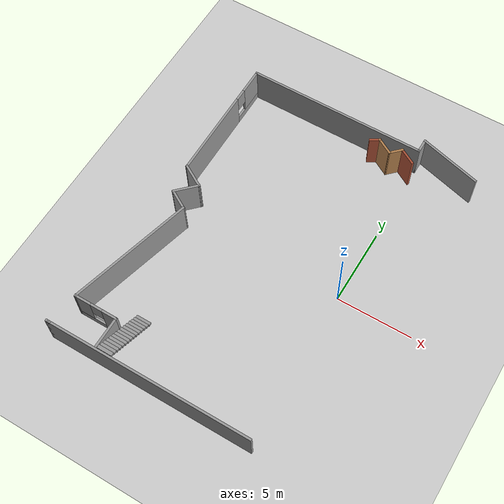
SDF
<sdf version="1.6">
 <world name="default">
  <model name="ground_plane">
   <static>1</static>
   <link name="link">
    <collision name="collision">
     <geometry><plane><normal>0 0 1</normal><size>100 100</size></plane></geometry>
     <surface><friction><ode><mu>100</mu><mu2>50</mu2></ode></friction></surface>
    </collision>
    <visual name="visual">
     <cast_shadows>0</cast_shadows>
     <geometry><plane><normal>0 0 1</normal><size>100 100</size></plane></geometry>
     <material>
      <script><uri>file://media/materials/scripts/gazebo.material</uri><name>Gazebo/Grey</name></script>
     </material>
    </visual>
   </link>
  </model>
  <model name="cierre_slaw_world">
   <pose>-4.66715 0.29944 0 0 -0 0</pose>
   <link name="Stairs_0">
    <visual name="Stairs_0_Visual_0">
     <pose>-4.59466 -7.51518 0.083333 0 -0 0</pose>
     <geometry><box><size>1 0.233333 0.166667</size></box></geometry>
     <material>
      <script><uri>file://media/materials/scripts/gazebo.material</uri><name>Gazebo/Grey</name></script>
      <ambient>1 1 1 1</ambient>
     </material>
    </visual>
    <collision name="Stairs_0_Collision_0">
     <geometry><box><size>1 0.233333 0.166667</size></box></geometry>
     <pose>-4.59466 -7.51518 0.083333 0 -0 0</pose>
    </collision>
    <visual name="Stairs_0_Visual_1">
     <pose>-4.59466 -7.74852 0.25 0 -0 0</pose>
     <geometry><box><size>1 0.233333 0.166667</size></box></geometry>
     <material>
      <script><uri>file://media/materials/scripts/gazebo.material</uri><name>Gazebo/Grey</name></script>
      <ambient>1 1 1 1</ambient>
     </material>
    </visual>
    <collision name="Stairs_0_Collision_1">
     <geometry><box><size>1 0.233333 0.166667</size></box></geometry>
     <pose>-4.59466 -7.74852 0.25 0 -0 0</pose>
    </collision>
    <visual name="Stairs_0_Visual_2">
     <pose>-4.59466 -7.98185 0.416667 0 -0 0</pose>
     <geometry><box><size>1 0.233333 0.166667</size></box></geometry>
     <material>
      <script><uri>file://media/materials/scripts/gazebo.material</uri><name>Gazebo/Grey</name></script>
      <ambient>1 1 1 1</ambient>
     </material>
    </visual>
    <collision name="Stairs_0_Collision_2">
     <geometry><box><size>1 0.233333 0.166667</size></box></geometry>
     <pose>-4.59466 -7.98185 0.416667 0 -0 0</pose>
    </collision>
    <visual name="Stairs_0_Visual_3">
     <pose>-4.59466 -8.21518 0.583333 0 -0 0</pose>
     <geometry><box><size>1 0.233333 0.166667</size></box></geometry>
     <material>
      <script><uri>file://media/materials/scripts/gazebo.material</uri><name>Gazebo/Grey</name></script>
      <ambient>1 1 1 1</ambient>
     </material>
    </visual>
    <collision name="Stairs_0_Collision_3">
     <geometry><box><size>1 0.233333 0.166667</size></box></geometry>
     <pose>-4.59466 -8.21518 0.583333 0 -0 0</pose>
    </collision>
    <visual name="Stairs_0_Visual_4">
     <pose>-4.59466 -8.44852 0.75 0 -0 0</pose>
     <geometry><box><size>1 0.233333 0.166667</size></box></geometry>
     <material>
      <script><uri>file://media/materials/scripts/gazebo.material</uri><name>Gazebo/Grey</name></script>
      <ambient>1 1 1 1</ambient>
     </material>
    </visual>
    <collision name="Stairs_0_Collision_4">
     <geometry><box><size>1 0.233333 0.166667</size></box></geometry>
     <pose>-4.59466 -8.44852 0.75 0 -0 0</pose>
    </collision>
    <visual name="Stairs_0_Visual_5">
     <pose>-4.59466 -8.68185 0.916667 0 -0 0</pose>
     <geometry><box><size>1 0.233333 0.166667</size></box></geometry>
     <material>
      <script><uri>file://media/materials/scripts/gazebo.material</uri><name>Gazebo/Grey</name></script>
      <ambient>1 1 1 1</ambient>
     </material>
    </visual>
    <collision name="Stairs_0_Collision_5">
     <geometry><box><size>1 0.233333 0.166667</size></box></geometry>
     <pose>-4.59466 -8.68185 0.916667 0 -0 0</pose>
    </collision>
    <visual name="Stairs_0_Visual_6">
     <pose>-4.59466 -8.91518 1.08333 0 -0 0</pose>
     <geometry><box><size>1 0.233333 0.166667</size></box></geometry>
     <material>
      <script><uri>file://media/materials/scripts/gazebo.material</uri><name>Gazebo/Grey</name></script>
      <ambient>1 1 1 1</ambient>
     </material>
    </visual>
    <collision name="Stairs_0_Collision_6">
     <geometry><box><size>1 0.233333 0.166667</size></box></geometry>
     <pose>-4.59466 -8.91518 1.08333 0 -0 0</pose>
    </collision>
    <visual name="Stairs_0_Visual_7">
     <pose>-4.59466 -9.14852 1.25 0 -0 0</pose>
     <geometry><box><size>1 0.233333 0.166667</size></box></geometry>
     <material>
      <script><uri>file://media/materials/scripts/gazebo.material</uri><name>Gazebo/Grey</name></script>
      <ambient>1 1 1 1</ambient>
     </material>
    </visual>
    <collision name="Stairs_0_Collision_7">
     <geometry><box><size>1 0.233333 0.166667</size></box></geometry>
     <pose>-4.59466 -9.14852 1.25 0 -0 0</pose>
    </collision>
    <visual name="Stairs_0_Visual_8">
     <pose>-4.59466 -9.38185 1.41667 0 -0 0</pose>
     <geometry><box><size>1 0.233333 0.166667</size></box></geometry>
     <material>
      <script><uri>file://media/materials/scripts/gazebo.material</uri><name>Gazebo/Grey</name></script>
      <ambient>1 1 1 1</ambient>
     </material>
    </visual>
    <collision name="Stairs_0_Collision_8">
     <geometry><box><size>1 0.233333 0.166667</size></box></geometry>
     <pose>-4.59466 -9.38185 1.41667 0 -0 0</pose>
    </collision>
    <visual name="Stairs_0_Visual_9">
     <pose>-4.59466 -9.61518 1.58333 0 -0 0</pose>
     <geometry><box><size>1 0.233333 0.166667</size></box></geometry>
     <material>
      <script><uri>file://media/materials/scripts/gazebo.material</uri><name>Gazebo/Grey</name></script>
      <ambient>1 1 1 1</ambient>
     </material>
    </visual>
    <collision name="Stairs_0_Collision_9">
     <geometry><box><size>1 0.233333 0.166667</size></box></geometry>
     <pose>-4.59466 -9.61518 1.58333 0 -0 0</pose>
    </collision>
    <visual name="Stairs_0_Visual_10">
     <pose>-4.59466 -9.84852 1.75 0 -0 0</pose>
     <geometry><box><size>1 0.233333 0.166667</size></box></geometry>
     <material>
      <script><uri>file://media/materials/scripts/gazebo.material</uri><name>Gazebo/Grey</name></script>
      <ambient>1 1 1 1</ambient>
     </material>
    </visual>
    <collision name="Stairs_0_Collision_10">
     <geometry><box><size>1 0.233333 0.166667</size></box></geometry>
     <pose>-4.59466 -9.84852 1.75 0 -0 0</pose>
    </collision>
    <visual name="Stairs_0_Visual_11">
     <pose>-4.59466 -10.0819 1.91667 0 -0 0</pose>
     <geometry><box><size>1 0.233333 0.166667</size></box></geometry>
     <material>
      <script><uri>file://media/materials/scripts/gazebo.material</uri><name>Gazebo/Grey</name></script>
      <ambient>1 1 1 1</ambient>
     </material>
    </visual>
    <collision name="Stairs_0_Collision_11">
     <geometry><box><size>1 0.233333 0.166667</size></box></geometry>
     <pose>-4.59466 -10.0819 1.91667 0 -0 0</pose>
    </collision>
    <visual name="Stairs_0_Visual_12">
     <pose>-4.59466 -10.3152 2.08333 0 -0 0</pose>
     <geometry><box><size>1 0.233333 0.166667</size></box></geometry>
     <material>
      <script><uri>file://media/materials/scripts/gazebo.material</uri><name>Gazebo/Grey</name></script>
      <ambient>1 1 1 1</ambient>
     </material>
    </visual>
    <collision name="Stairs_0_Collision_12">
     <geometry><box><size>1 0.233333 0.166667</size></box></geometry>
     <pose>-4.59466 -10.3152 2.08333 0 -0 0</pose>
    </collision>
    <visual name="Stairs_0_Visual_13">
     <pose>-4.59466 -10.5485 2.25 0 -0 0</pose>
     <geometry><box><size>1 0.233333 0.166667</size></box></geometry>
     <material>
      <script><uri>file://media/materials/scripts/gazebo.material</uri><name>Gazebo/Grey</name></script>
      <ambient>1 1 1 1</ambient>
     </material>
    </visual>
    <collision name="Stairs_0_Collision_13">
     <geometry><box><size>1 0.233333 0.166667</size></box></geometry>
     <pose>-4.59466 -10.5485 2.25 0 -0 0</pose>
    </collision>
    <visual name="Stairs_0_Visual_14">
     <pose>-4.59466 -10.7819 2.41667 0 -0 0</pose>
     <geometry><box><size>1 0.233333 0.166667</size></box></geometry>
     <material>
      <script><uri>file://media/materials/scripts/gazebo.material</uri><name>Gazebo/Grey</name></script>
      <ambient>1 1 1 1</ambient>
     </material>
    </visual>
    <collision name="Stairs_0_Collision_14">
     <geometry><box><size>1 0.233333 0.166667</size></box></geometry>
     <pose>-4.59466 -10.7819 2.41667 0 -0 0</pose>
    </collision>
   </link>
   <link name="Wall_23">
    <collision name="Wall_23_Collision">
     <geometry><box><size>3.5 0.15 2.5</size></box></geometry>
     <pose>0 0 1.25 0 -0 0</pose>
    </collision>
    <visual name="Wall_23_Visual">
     <pose>0 0 1.25 0 -0 0</pose>
     <geometry><box><size>3.5 0.15 2.5</size></box></geometry>
     <material>
      <script><uri>file://media/materials/scripts/gazebo.material</uri><name>Gazebo/Grey</name></script>
      <ambient>1 1 1 1</ambient>
     </material>
    </visual>
    <pose>-6.85744 -10.9944 0 0 -0 0</pose>
   </link>
   <link name="Wall_24">
    <collision name="Wall_24_Collision">
     <geometry><box><size>2.25 0.15 2.5</size></box></geometry>
     <pose>0 0 1.25 0 -0 0</pose>
    </collision>
    <visual name="Wall_24_Visual">
     <pose>0 0 1.25 0 -0 0</pose>
     <geometry><box><size>2.25 0.15 2.5</size></box></geometry>
     <material>
      <script><uri>file://media/materials/scripts/gazebo.material</uri><name>Gazebo/Grey</name></script>
      <ambient>1 1 1 1</ambient>
     </material>
    </visual>
    <pose>-5.18244 -9.94435 0 0 -0 1.5708</pose>
   </link>
   <link name="Wall_25">
    <pose>-6.60744 -8.89435 0 0 -0 3.14159</pose>
    <visual name="Wall_25_Visual_0">
     <pose>-0.971946 0 1.25 0 -0 0</pose>
     <geometry><box><size>1.05611 0.15 2.5</size></box></geometry>
     <material>
      <script><uri>file://media/materials/scripts/gazebo.material</uri><name>Gazebo/Grey</name></script>
      <ambient>1 1 1 1</ambient>
     </material>
    </visual>
    <collision name="Wall_25_Collision_0">
     <geometry><box><size>1.05611 0.15 2.5</size></box></geometry>
     <pose>-0.971946 0 1.25 0 -0 0</pose>
    </collision>
    <visual name="Wall_25_Visual_1">
     <pose>0.528054 0 0.25 0 -0 0</pose>
     <geometry><box><size>1.94389 0.15 0.5</size></box></geometry>
     <material>
      <script><uri>file://media/materials/scripts/gazebo.material</uri><name>Gazebo/Grey</name></script>
      <ambient>1 1 1 1</ambient>
     </material>
    </visual>
    <collision name="Wall_25_Collision_1">
     <geometry><box><size>1.94389 0.15 0.5</size></box></geometry>
     <pose>0.528054 0 0.25 0 -0 0</pose>
    </collision>
    <visual name="Wall_25_Visual_2">
     <pose>0.928054 0 1.5 0 -0 0</pose>
     <geometry><box><size>1.14389 0.15 2</size></box></geometry>
     <material>
      <script><uri>file://media/materials/scripts/gazebo.material</uri><name>Gazebo/Grey</name></script>
      <ambient>1 1 1 1</ambient>
     </material>
    </visual>
    <collision name="Wall_25_Collision_2">
     <geometry><box><size>1.14389 0.15 2</size></box></geometry>
     <pose>0.928054 0 1.5 0 -0 0</pose>
    </collision>
    <visual name="Wall_25_Visual_3">
     <pose>-0.043892 0 1.9 0 -0 0</pose>
     <geometry><box><size>0.8 0.15 1.2</size></box></geometry>
     <material>
      <script><uri>file://media/materials/scripts/gazebo.material</uri><name>Gazebo/Grey</name></script>
      <ambient>1 1 1 1</ambient>
     </material>
    </visual>
    <collision name="Wall_25_Collision_3">
     <geometry><box><size>0.8 0.15 1.2</size></box></geometry>
     <pose>-0.043892 0 1.9 0 -0 0</pose>
    </collision>
   </link>
   <link name="Wall_26">
    <collision name="Wall_26_Collision">
     <geometry><box><size>8.5 0.15 2.5</size></box></geometry>
     <pose>0 0 1.25 0 -0 0</pose>
    </collision>
    <visual name="Wall_26_Visual">
     <pose>0 0 1.25 0 -0 0</pose>
     <geometry><box><size>8.5 0.15 2.5</size></box></geometry>
     <material>
      <script><uri>file://media/materials/scripts/gazebo.material</uri><name>Gazebo/Grey</name></script>
      <ambient>1 1 1 1</ambient>
     </material>
    </visual>
    <pose>-6.95187 -4.86161 0 0 -0 1.309</pose>
   </link>
   <link name="Wall_27">
    <collision name="Wall_27_Collision">
     <geometry><box><size>1.5 0.15 2.5</size></box></geometry>
     <pose>0 0 1.25 0 -0 0</pose>
    </collision>
    <visual name="Wall_27_Visual">
     <pose>0 0 1.25 0 -0 0</pose>
     <geometry><box><size>1.5 0.15 2.5</size></box></geometry>
     <material>
      <script><uri>file://media/materials/scripts/gazebo.material</uri><name>Gazebo/Grey</name></script>
      <ambient>1 1 1 1</ambient>
     </material>
    </visual>
    <pose>-6.45587 -0.491373 0 0 -0 2.61799</pose>
   </link>
   <link name="Wall_28">
    <collision name="Wall_28_Collision">
     <geometry><box><size>1.75 0.15 2.5</size></box></geometry>
     <pose>0 0 1.25 0 -0 0</pose>
    </collision>
    <visual name="Wall_28_Visual">
     <pose>0 0 1.25 0 -0 0</pose>
     <geometry><box><size>1.75 0.15 2.5</size></box></geometry>
     <material>
      <script><uri>file://media/materials/scripts/gazebo.material</uri><name>Gazebo/Grey</name></script>
      <ambient>1 1 1 1</ambient>
     </material>
    </visual>
    <pose>-6.47475 0.411813 0 0 -0 0.785398</pose>
   </link>
   <link name="Wall_29">
    <collision name="Wall_29_Collision">
     <geometry><box><size>1.75 0.15 2.5</size></box></geometry>
     <pose>0 0 1.25 0 -0 0</pose>
    </collision>
    <visual name="Wall_29_Visual">
     <pose>0 0 1.25 0 -0 0</pose>
     <geometry><box><size>1.75 0.15 2.5</size></box></geometry>
     <material>
      <script><uri>file://media/materials/scripts/gazebo.material</uri><name>Gazebo/Grey</name></script>
      <ambient>1 1 1 1</ambient>
     </material>
    </visual>
    <pose>-6.60189 1.3775 0 0 -0 2.61799</pose>
   </link>
   <link name="Wall_30">
    <pose>-7.29471 5.9525 0 0 -0 1.5708</pose>
    <visual name="Wall_30_Visual_0">
     <pose>-1.26161 0 1.25 0 -0 0</pose>
     <geometry><box><size>5.97679 0.15 2.5</size></box></geometry>
     <material>
      <script><uri>file://media/materials/scripts/gazebo.material</uri><name>Gazebo/Grey</name></script>
      <ambient>1 1 1 1</ambient>
     </material>
    </visual>
    <collision name="Wall_30_Collision_0">
     <geometry><box><size>5.97679 0.15 2.5</size></box></geometry>
     <pose>-1.26161 0 1.25 0 -0 0</pose>
    </collision>
    <visual name="Wall_30_Visual_1">
     <pose>2.9884 0 0.25 0 -0 0</pose>
     <geometry><box><size>2.52321 0.15 0.5</size></box></geometry>
     <material>
      <script><uri>file://media/materials/scripts/gazebo.material</uri><name>Gazebo/Grey</name></script>
      <ambient>1 1 1 1</ambient>
     </material>
    </visual>
    <collision name="Wall_30_Collision_1">
     <geometry><box><size>2.52321 0.15 0.5</size></box></geometry>
     <pose>2.9884 0 0.25 0 -0 0</pose>
    </collision>
    <visual name="Wall_30_Visual_2">
     <pose>3.3884 0 1.5 0 -0 0</pose>
     <geometry><box><size>1.72321 0.15 2</size></box></geometry>
     <material>
      <script><uri>file://media/materials/scripts/gazebo.material</uri><name>Gazebo/Grey</name></script>
      <ambient>1 1 1 1</ambient>
     </material>
    </visual>
    <collision name="Wall_30_Collision_2">
     <geometry><box><size>1.72321 0.15 2</size></box></geometry>
     <pose>3.3884 0 1.5 0 -0 0</pose>
    </collision>
    <visual name="Wall_30_Visual_3">
     <pose>2.12679 0 1.9 0 -0 0</pose>
     <geometry><box><size>0.8 0.15 1.2</size></box></geometry>
     <material>
      <script><uri>file://media/materials/scripts/gazebo.material</uri><name>Gazebo/Grey</name></script>
      <ambient>1 1 1 1</ambient>
     </material>
    </visual>
    <collision name="Wall_30_Collision_3">
     <geometry><box><size>0.8 0.15 1.2</size></box></geometry>
     <pose>2.12679 0 1.9 0 -0 0</pose>
    </collision>
   </link>
   <link name="Wall_31">
    <collision name="Wall_31_Collision">
     <geometry><box><size>12 0.15 2.5</size></box></geometry>
     <pose>0 0 1.25 0 -0 0</pose>
    </collision>
    <visual name="Wall_31_Visual">
     <pose>0 0 1.25 0 -0 0</pose>
     <geometry><box><size>12 0.15 2.5</size></box></geometry>
     <material>
      <script><uri>file://media/materials/scripts/gazebo.material</uri><name>Gazebo/Grey</name></script>
      <ambient>1 1 1 1</ambient>
     </material>
    </visual>
    <pose>-1.36971 10.1275 0 0 -0 0</pose>
   </link>
   <link name="Wall_32">
    <collision name="Wall_32_Collision">
     <geometry><box><size>1 0.15 2.5</size></box></geometry>
     <pose>0 0 1.25 0 -0 0</pose>
    </collision>
    <visual name="Wall_32_Visual">
     <pose>0 0 1.25 0 -0 0</pose>
     <geometry><box><size>1 0.15 2.5</size></box></geometry>
     <material>
      <script><uri>file://media/materials/scripts/gazebo.material</uri><name>Gazebo/Grey</name></script>
      <ambient>1 1 1 1</ambient>
     </material>
    </visual>
    <pose>4.55529 10.5525 0 0 -0 1.5708</pose>
   </link>
   <link name="Wall_33">
    <collision name="Wall_33_Collision">
     <geometry><box><size>4.25 0.15 2.5</size></box></geometry>
     <pose>0 0 1.25 0 -0 0</pose>
    </collision>
    <visual name="Wall_33_Visual">
     <pose>0 0 1.25 0 -0 0</pose>
     <geometry><box><size>4.25 0.15 2.5</size></box></geometry>
     <material>
      <script><uri>file://media/materials/scripts/gazebo.material</uri><name>Gazebo/Grey</name></script>
      <ambient>1 1 1 1</ambient>
     </material>
    </visual>
    <pose>6.53544 10.4469 0 0 0 -0.261799</pose>
   </link>
   <link name="Wall_35">
    <collision name="Wall_35_Collision">
     <geometry><box><size>13.75 0.15 2.5</size></box></geometry>
     <pose>0 0 1.25 0 -0 0</pose>
    </collision>
    <visual name="Wall_35_Visual">
     <pose>0 0 1.25 0 -0 0</pose>
     <geometry><box><size>13.75 0.15 2.5</size></box></geometry>
     <material>
      <script><uri>file://media/materials/scripts/gazebo.material</uri><name>Gazebo/Grey</name></script>
      <ambient>1 1 1 1</ambient>
     </material>
    </visual>
    <pose>-1.73244 -10.9944 0 0 -0 0</pose>
   </link>
   <link name="Wall_37">
    <collision name="Wall_37_Collision">
     <geometry><box><size>0.75 0.15 2.5</size></box></geometry>
     <pose>0 0 1.25 0 -0 0</pose>
    </collision>
    <visual name="Wall_37_Visual">
     <pose>0 0 1.25 0 -0 0</pose>
     <geometry><box><size>0.75 0.15 2.5</size></box></geometry>
     <material>
      <script><uri>file://media/materials/scripts/gazebo.material</uri><name>Gazebo/Bricks</name></script>
      <ambient>1 1 1 1</ambient>
     </material>
    </visual>
    <pose>1.81794 9.45985 0 0 -0 0.523599</pose>
   </link>
   <link name="Wall_38">
    <collision name="Wall_38_Collision">
     <geometry><box><size>1.25 0.15 2.5</size></box></geometry>
     <pose>0 0 1.25 0 -0 0</pose>
    </collision>
    <visual name="Wall_38_Visual">
     <pose>0 0 1.25 0 -0 0</pose>
     <geometry><box><size>1.25 0.15 2.5</size></box></geometry>
     <material>
      <script><uri>file://media/materials/scripts/gazebo.material</uri><name>Gazebo/Wood</name></script>
      <ambient>1 1 1 1</ambient>
     </material>
    </visual>
    <pose>2.55406 9.33485 0 0 0 -0.523599</pose>
   </link>
   <link name="Wall_39">
    <collision name="Wall_39_Collision">
     <geometry><box><size>1 0.15 2.5</size></box></geometry>
     <pose>0 0 1.25 0 -0 0</pose>
    </collision>
    <visual name="Wall_39_Visual">
     <pose>0 0 1.25 0 -0 0</pose>
     <geometry><box><size>1 0.15 2.5</size></box></geometry>
     <material>
      <script><uri>file://media/materials/scripts/gazebo.material</uri><name>Gazebo/Wood</name></script>
      <ambient>1 1 1 1</ambient>
     </material>
    </visual>
    <pose>3.33089 9.36037 0 0 -0 0.785398</pose>
   </link>
   <link name="Wall_40">
    <collision name="Wall_40_Collision">
     <geometry><box><size>1.25 0.15 2.5</size></box></geometry>
     <pose>0 0 1.25 0 -0 0</pose>
    </collision>
    <visual name="Wall_40_Visual">
     <pose>0 0 1.25 0 -0 0</pose>
     <geometry><box><size>1.25 0.15 2.5</size></box></geometry>
     <material>
      <script><uri>file://media/materials/scripts/gazebo.material</uri><name>Gazebo/Bricks</name></script>
      <ambient>1 1 1 1</ambient>
     </material>
    </visual>
    <pose>4.10773 9.38589 0 0 0 -0.523599</pose>
   </link>
   <static>1</static>
  </model>
 </world>
</sdf>
